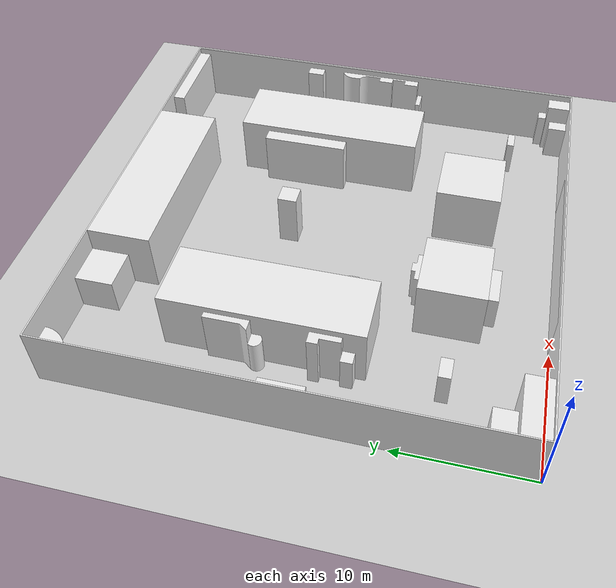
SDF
<!-- ### sdf is standard definition of worlds in gazebo -->
<sdf version='1.5'>
  <world name='ideal_env_world'>
    <!-- A global light source -->
    <include>

<!-- ### Model which comes with gazebo e.g sun -->
      <uri>model://sun</uri>
    </include>

    <!-- A ground plane -->
    <include>
      <uri>model://ground_plane</uri>
    </include>

    <physics type="ode">
      <real_time_update_rate>1000.0</real_time_update_rate>
      <max_step_size>0.001</max_step_size>
      <real_time_factor>1</real_time_factor>
      <ode>
        <solver>
          <type>quick</type>
          <iters>150</iters>
          <precon_iters>0</precon_iters>
          <sor>1.400000</sor>
          <use_dynamic_moi_rescaling>1</use_dynamic_moi_rescaling>
        </solver>
        <constraints>
          <cfm>0.00001</cfm>
          <erp>0.2</erp>
          <contact_max_correcting_vel>2000.000000</contact_max_correcting_vel>
          <contact_surface_layer>0.01000</contact_surface_layer>
        </constraints>
      </ode>
    </physics>

    <!-- Load world -->
    <include>
<!-- ### it used to be: model://turtlebot3_world -->
      <uri>model://ideal_env_model</uri>
      <static>1</static>
    </include>

    <scene>
      <ambient>0.4 0.4 0.4 1</ambient>
      <background>0.7 0.7 0.7 1</background>
      <shadows>true</shadows>
    </scene>

 <!--  ### note the pose line below moves the location of the object. I could also add this line under the sun model to adjust the location of the sun away from its default pose -->
    <gui fullscreen='0'>
      <camera name='user_camera'>
        <pose>0.8 0.0 12.0 0 1.5708 0</pose>
        <view_controller>orbit</view_controller>
      </camera>
    </gui>

  </world>
</sdf>

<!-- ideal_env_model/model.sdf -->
<!-- model.sdf is the version which is actually run. Not version 1.4 ~(model-1_4.sdf) -->
<!-- This is because of how its set in the .world file -->

<!-- ### you can describe robots, models or even entire environments of robotic simulations using sdf.
# A URDF is restricted to creating a single robot. -->

<!-- ### sdf tag, everthing (our model) will be contained within -->
<sdf version='1.5'>

<!-- ### defining a model. We will only have 1 model within this sdf file. The model element defines a complete robot or any other physical object. -->

<!-- ### name used ot be: 'ros_symbol' -->
    <model name='ideal_env_model'>

      <static>1</static>

      <link name='Environment'>

<!-- ### Now we have to define 'collision' and 'visual' parts
# collision:
#The collison is used to do the maths of the dynamics of the environment, e.g when a robot and environment collide. -->

      <collision name='OriginalObstacles'>
          <pose>0 0 0 0 0 0</pose>
          <geometry>
           <mesh>
            <uri>model://ideal_env_model/meshes/OriginalObstacles.dae</uri>
            <scale>1.0 1.0 1.0</scale>
           </mesh>
          </geometry>
          <max_contacts>10</max_contacts>
          <surface>
            <bounce/>
            <friction>
              <ode/>
            </friction>
            <contact>
              <ode/>
            </contact>
          </surface>
        </collision>
<!--visual: -->
        <visual name='OriginalObstacles'>
          <pose>0 0 0 0 0 0</pose>
          <geometry>
           <mesh>
            <uri>model://ideal_env_model/meshes/OriginalObstacles.dae</uri>
            <scale>1.0 1.0 1.0</scale>
           </mesh>
          </geometry>
          <material>
            <script>
              <uri>file://media/materials/scripts/gazebo.material</uri>
              <name>Gazebo/White</name>
            </script>
          </material>
        </visual>

      <collision name='NewObstaclesShorter'>
          <pose>0 0 0 0 0 0</pose>
          <geometry>
           <mesh>
            <uri>model://ideal_env_model/meshes/NewObstaclesShorter.dae</uri>
            <scale>1.0 1.0 1.0</scale>
           </mesh>
          </geometry>
          <max_contacts>10</max_contacts>
          <surface>
            <bounce/>
            <friction>
              <ode/>
            </friction>
            <contact>
              <ode/>
            </contact>
          </surface>
        </collision>
<!--visual: -->
        <visual name='NewObstaclesShorter'>
          <pose>0 0 0 0 0 0</pose>
          <geometry>
           <mesh>
            <uri>model://ideal_env_model/meshes/NewObstaclesShorter.dae</uri>
            <scale>1.0 1.0 1.0</scale>
           </mesh>
          </geometry>
          <material>
            <script>
              <uri>file://media/materials/scripts/gazebo.material</uri>
              <name>Gazebo/White</name>
            </script>
          </material>
        </visual>

      <collision name='NewObstaclesTaller'>
          <pose>0 0 0 0 0 0</pose>
          <geometry>
           <mesh>
            <uri>model://ideal_env_model/meshes/NewObstaclesTaller.dae</uri>
            <scale>1.0 1.0 1.0</scale>
           </mesh>
          </geometry>
          <max_contacts>10</max_contacts>
          <surface>
            <bounce/>
            <friction>
              <ode/>
            </friction>
            <contact>
              <ode/>
            </contact>
          </surface>
        </collision>
<!--visual: -->
        <visual name='NewObstaclesTaller'>
          <pose>0 0 0 0 0 0</pose>
          <geometry>
           <mesh>
            <uri>model://ideal_env_model/meshes/NewObstaclesTaller.dae</uri>
            <scale>1.0 1.0 1.0</scale>
           </mesh>
          </geometry>
          <material>
            <script>
              <uri>file://media/materials/scripts/gazebo.material</uri>
              <name>Gazebo/White</name>
            </script>
          </material>
        </visual>

      <collision name='Walls'>
          <pose>0 0 0 0 0 0</pose>
          <geometry>
           <mesh>
            <uri>model://ideal_env_model/meshes/Walls.dae</uri>
            <scale>1.0 1.0 1.0</scale>
           </mesh>
          </geometry>
          <max_contacts>10</max_contacts>
          <surface>
            <bounce/>
            <friction>
              <ode/>
            </friction>
            <contact>
              <ode/>
            </contact>
          </surface>
        </collision>
<!--visual: -->
        <visual name='Walls'>
          <pose>0 0 0 0 0 0</pose>
          <geometry>
           <mesh>
            <uri>model://ideal_env_model/meshes/Walls.dae</uri>
            <scale>1.0 1.0 1.0</scale>
           </mesh>
          </geometry>
          <material>
            <script>
              <uri>file://media/materials/scripts/gazebo.material</uri>
              <name>Gazebo/White</name>
            </script>
          </material>
        </visual>

      <collision name='Outlet'>
          <pose>0 0 0 0 0 0</pose>
          <geometry>
           <mesh>
            <uri>model://ideal_env_model/meshes/Outlet.dae</uri>
            <scale>1.0 1.0 1.0</scale>
           </mesh>
          </geometry>
          <max_contacts>10</max_contacts>
          <surface>
            <bounce/>
            <friction>
              <ode/>
            </friction>
            <contact>
              <ode/>
            </contact>
          </surface>
        </collision>
<!--visual: -->
        <visual name='Outlet'>
          <pose>0 0 0 0 0 0</pose>
          <geometry>
           <mesh>
            <uri>model://ideal_env_model/meshes/Outlet.dae</uri>
            <scale>1.0 1.0 1.0</scale>
           </mesh>
          </geometry>
          <material>
            <script>
              <uri>file://media/materials/scripts/gazebo.material</uri>
              <name>Gazebo/White</name>
            </script>
          </material>
        </visual>

    </link>
  </model>
</sdf>
